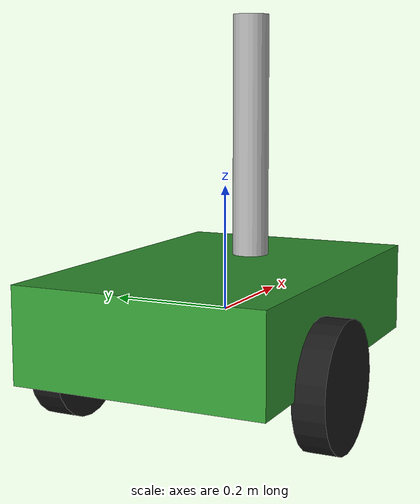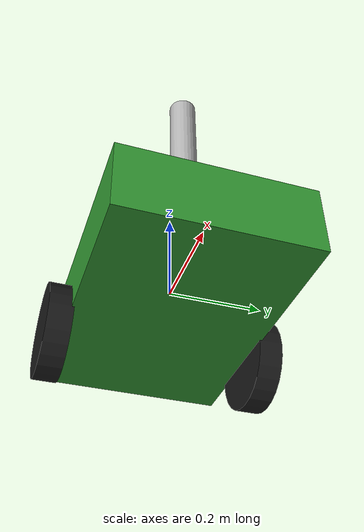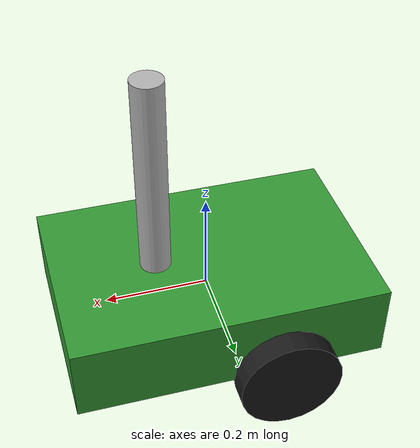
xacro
<?xml version="1.0"?>
<robot name="xacro_with_defaults" xmlns:xacro="http://www.ros.org/wiki/xacro">

  <!-- All args carry defaults → importer must expand without user input. -->
  <xacro:arg name="robot_name"   default="test_robot"/>
  <xacro:arg name="prefix"       default=""/>
  <xacro:arg name="body_color"   default="0.2 0.6 0.2 1.0"/>
  <xacro:arg name="body_mass"    default="10.0"/>

  <xacro:property name="robot_name_p"  value="$(arg robot_name)"/>
  <xacro:property name="prefix_p"      value="$(arg prefix)"/>
  <xacro:property name="body_color_p"  value="$(arg body_color)"/>
  <xacro:property name="body_mass_p"   value="$(arg body_mass)"/>

  <!-- Base link -->
  <link name="${prefix_p}base_link">
    <visual>
      <geometry>
        <box size="0.6 0.4 0.15"/>
      </geometry>
      <material name="body_mat">
        <color rgba="${body_color_p}"/>
      </material>
    </visual>
    <collision>
      <geometry>
        <box size="0.6 0.4 0.15"/>
      </geometry>
    </collision>
    <inertial>
      <mass value="${body_mass_p}"/>
      <inertia ixx="0.1" ixy="0.0" ixz="0.0"
               iyy="0.2" iyz="0.0" izz="0.25"/>
    </inertial>
  </link>

  <!-- Sensor mast -->
  <link name="${prefix_p}mast_link">
    <visual>
      <origin xyz="0 0 0.2"/>
      <geometry>
        <cylinder radius="0.03" length="0.4"/>
      </geometry>
      <material name="mast_mat">
        <color rgba="0.7 0.7 0.7 1.0"/>
      </material>
    </visual>
    <collision>
      <origin xyz="0 0 0.2"/>
      <geometry>
        <cylinder radius="0.03" length="0.4"/>
      </geometry>
    </collision>
    <inertial>
      <mass value="0.3"/>
      <inertia ixx="0.005" ixy="0.0" ixz="0.0"
               iyy="0.005" iyz="0.0" izz="0.0002"/>
    </inertial>
  </link>

  <joint name="${prefix_p}base_to_mast" type="fixed">
    <parent link="${prefix_p}base_link"/>
    <child link="${prefix_p}mast_link"/>
    <origin xyz="0.1 0 0.075"/>
  </joint>

  <!-- Left wheel -->
  <xacro:macro name="wheel" params="side reflect">
    <link name="${prefix_p}${side}_wheel">
      <visual>
        <origin rpy="1.5708 0 0"/>
        <geometry>
          <cylinder radius="0.1" length="0.05"/>
        </geometry>
        <material name="wheel_mat">
          <color rgba="0.1 0.1 0.1 1.0"/>
        </material>
      </visual>
      <collision>
        <origin rpy="1.5708 0 0"/>
        <geometry>
          <cylinder radius="0.1" length="0.05"/>
        </geometry>
      </collision>
      <inertial>
        <mass value="1.0"/>
        <inertia ixx="0.005" ixy="0.0" ixz="0.0"
                 iyy="0.005" iyz="0.0" izz="0.009"/>
      </inertial>
    </link>
    <joint name="${prefix_p}${side}_wheel_joint" type="continuous">
      <parent link="${prefix_p}base_link"/>
      <child link="${prefix_p}${side}_wheel"/>
      <axis xyz="0 1 0"/>
      <origin xyz="-0.1 ${reflect * 0.22} -0.075"/>
    </joint>
  </xacro:macro>

  <xacro:wheel side="left"  reflect="1"/>
  <xacro:wheel side="right" reflect="-1"/>

</robot>
